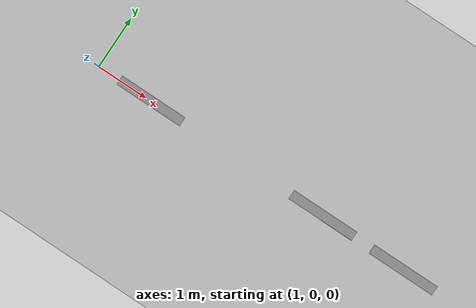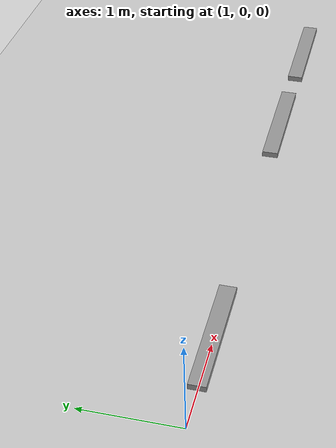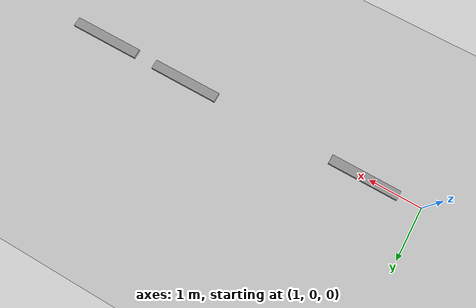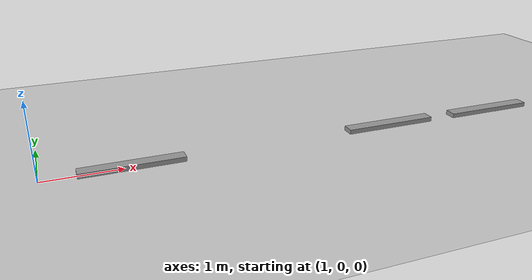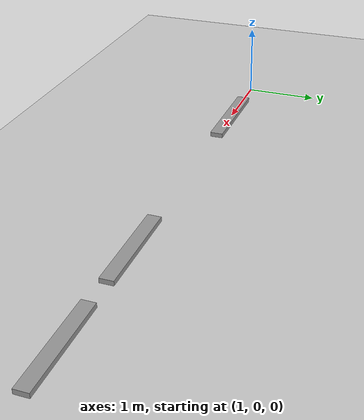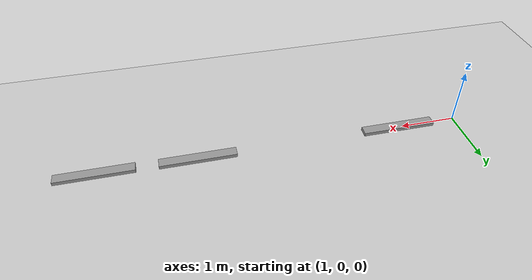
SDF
<sdf version='1.6'>
  <world name='default'>
    <light name='sun' type='directional'>
      <cast_shadows>1</cast_shadows>
      <pose frame=''>0 0 10 0 -0 0</pose>
      <diffuse>0.8 0.8 0.8 1</diffuse>
      <specular>0.2 0.2 0.2 1</specular>
      <attenuation>
        <range>1000</range>
        <constant>0.9</constant>
        <linear>0.01</linear>
        <quadratic>0.001</quadratic>
      </attenuation>
      <direction>-0.5 0.1 -0.9</direction>
    </light>
    <model name='ground_plane'>
      <static>1</static>
      <link name='link'>
        <collision name='collision'>
          <geometry>
            <plane>
              <normal>0 0 1</normal>
              <size>100 100</size>
            </plane>
          </geometry>
          <surface>
            <contact>
              <ode>
                <kp>1e+12</kp>
                <min_depth>0.01</min_depth>
              </ode>
            </contact>
            <friction>
              <ode>
                <mu>1e+06</mu>
                <mu2>500000</mu2>
              </ode>
              <torsional>
                <ode/>
              </torsional>
            </friction>
            <bounce/>
          </surface>
          <max_contacts>10</max_contacts>
        </collision>
        <visual name='visual'>
          <cast_shadows>0</cast_shadows>
          <geometry>
            <plane>
              <normal>0 0 1</normal>
              <size>100 100</size>
            </plane>
          </geometry>
          <material>
            <script>
              <uri>file://media/materials/scripts/gazebo.material</uri>
              <name>Gazebo/Grey</name>
            </script>
          </material>
        </visual>
        <self_collide>0</self_collide>
        <enable_wind>0</enable_wind>
        <kinematic>0</kinematic>
      </link>
    </model>
    <gravity>0 0 -9.8</gravity>
    <magnetic_field>6e-06 2.3e-05 -4.2e-05</magnetic_field>
    <atmosphere type='adiabatic'/>
    <physics name='default_physics' default='0' type='ode'>
      <max_step_size>0.001</max_step_size>
      <real_time_factor>1</real_time_factor>
      <real_time_update_rate>0</real_time_update_rate>
    </physics>
    <scene>
      <ambient>0.4 0.4 0.4 1</ambient>
      <background>0.7 0.7 0.7 1</background>
      <shadows>1</shadows>
    </scene>
    <wind/>
    <spherical_coordinates>
      <surface_model>EARTH_WGS84</surface_model>
      <latitude_deg>0</latitude_deg>
      <longitude_deg>0</longitude_deg>
      <elevation>0</elevation>
      <heading_deg>0</heading_deg>
    </spherical_coordinates>
    <model name='unit_box_heavy_clone_clone_clone'>
      <link name='unit_box::link'>
        <inertial>
          <mass>5000</mass>
          <inertia>
            <ixx>833.333</ixx>
            <ixy>0</ixy>
            <ixz>0</ixz>
            <iyy>833.333</iyy>
            <iyz>0</iyz>
            <izz>833.333</izz>
          </inertia>
          <pose frame=''>0 0 0 0 -0 0</pose>
        </inertial>
        <self_collide>0</self_collide>
        <enable_wind>0</enable_wind>
        <kinematic>0</kinematic>
        <pose frame=''>0 0 0 0 -0 0</pose>
        <gravity>1</gravity>
        <visual name='visual'>
          <geometry>
            <box>
              <size>1.30816 0.176312 0.062582</size>
            </box>
          </geometry>
          <material>
            <script>
              <name>Gazebo/Grey</name>
              <uri>file://media/materials/scripts/gazebo.material</uri>
            </script>
            <shader type='pixel'>
              <normal_map>__default__</normal_map>
            </shader>
          </material>
          <pose frame=''>0 0 0 0 -0 0</pose>
          <transparency>0</transparency>
          <cast_shadows>1</cast_shadows>
        </visual>
        <collision name='collision'>
          <laser_retro>0</laser_retro>
          <max_contacts>10</max_contacts>
          <pose frame=''>0 0 0 0 -0 0</pose>
          <geometry>
            <box>
              <size>1.30816 0.176312 0.062582</size>
            </box>
          </geometry>
          <surface>
            <friction>
              <ode>
                <mu>1</mu>
                <mu2>1</mu2>
                <fdir1>0 0 0</fdir1>
                <slip1>0</slip1>
                <slip2>0</slip2>
              </ode>
              <torsional>
                <coefficient>1</coefficient>
                <patch_radius>0</patch_radius>
                <surface_radius>0</surface_radius>
                <use_patch_radius>1</use_patch_radius>
                <ode>
                  <slip>0</slip>
                </ode>
              </torsional>
            </friction>
            <bounce>
              <restitution_coefficient>0</restitution_coefficient>
              <threshold>1e+06</threshold>
            </bounce>
            <contact>
              <collide_without_contact>0</collide_without_contact>
              <collide_without_contact_bitmask>1</collide_without_contact_bitmask>
              <collide_bitmask>1</collide_bitmask>
              <ode>
                <soft_cfm>0</soft_cfm>
                <soft_erp>0.2</soft_erp>
                <kp>1e+13</kp>
                <kd>1</kd>
                <max_vel>0.01</max_vel>
                <min_depth>0</min_depth>
              </ode>
              <bullet>
                <split_impulse>1</split_impulse>
                <split_impulse_penetration_threshold>-0.01</split_impulse_penetration_threshold>
                <soft_cfm>0</soft_cfm>
                <soft_erp>0.2</soft_erp>
                <kp>1e+13</kp>
                <kd>1</kd>
              </bullet>
            </contact>
          </surface>
        </collision>
      </link>
      <static>0</static>
      <allow_auto_disable>1</allow_auto_disable>
      <pose frame=''>2.08958 0.009134 0.031291 2e-06 -0 -3e-05</pose>
    </model>
    <model name='unit_box_heavy_clone_clone_clone_clone'>
      <link name='unit_box::link'>
        <inertial>
          <mass>5000</mass>
          <inertia>
            <ixx>833.333</ixx>
            <ixy>0</ixy>
            <ixz>0</ixz>
            <iyy>833.333</iyy>
            <iyz>0</iyz>
            <izz>833.333</izz>
          </inertia>
          <pose frame=''>0 0 0 0 -0 0</pose>
        </inertial>
        <self_collide>0</self_collide>
        <enable_wind>0</enable_wind>
        <kinematic>0</kinematic>
        <pose frame=''>0 0 0 0 -0 0</pose>
        <gravity>1</gravity>
        <visual name='visual'>
          <geometry>
            <box>
              <size>1.30816 0.176312 0.062582</size>
            </box>
          </geometry>
          <material>
            <script>
              <name>Gazebo/Grey</name>
              <uri>file://media/materials/scripts/gazebo.material</uri>
            </script>
            <shader type='pixel'>
              <normal_map>__default__</normal_map>
            </shader>
          </material>
          <pose frame=''>0 0 0 0 -0 0</pose>
          <transparency>0</transparency>
          <cast_shadows>1</cast_shadows>
        </visual>
        <collision name='collision'>
          <laser_retro>0</laser_retro>
          <max_contacts>10</max_contacts>
          <pose frame=''>0 0 0 0 -0 0</pose>
          <geometry>
            <box>
              <size>1.30816 0.176312 0.062582</size>
            </box>
          </geometry>
          <surface>
            <friction>
              <ode>
                <mu>1</mu>
                <mu2>1</mu2>
                <fdir1>0 0 0</fdir1>
                <slip1>0</slip1>
                <slip2>0</slip2>
              </ode>
              <torsional>
                <coefficient>1</coefficient>
                <patch_radius>0</patch_radius>
                <surface_radius>0</surface_radius>
                <use_patch_radius>1</use_patch_radius>
                <ode>
                  <slip>0</slip>
                </ode>
              </torsional>
            </friction>
            <bounce>
              <restitution_coefficient>0</restitution_coefficient>
              <threshold>1e+06</threshold>
            </bounce>
            <contact>
              <collide_without_contact>0</collide_without_contact>
              <collide_without_contact_bitmask>1</collide_without_contact_bitmask>
              <collide_bitmask>1</collide_bitmask>
              <ode>
                <soft_cfm>0</soft_cfm>
                <soft_erp>0.2</soft_erp>
                <kp>1e+13</kp>
                <kd>1</kd>
                <max_vel>0.01</max_vel>
                <min_depth>0</min_depth>
              </ode>
              <bullet>
                <split_impulse>1</split_impulse>
                <split_impulse_penetration_threshold>-0.01</split_impulse_penetration_threshold>
                <soft_cfm>0</soft_cfm>
                <soft_erp>0.2</soft_erp>
                <kp>1e+13</kp>
                <kd>1</kd>
              </bullet>
            </contact>
          </surface>
        </collision>
      </link>
      <static>0</static>
      <allow_auto_disable>1</allow_auto_disable>
      <pose frame=''>7.3588 -0.001088 0.031291 -3e-06 -0 -3e-05</pose>
    </model>
    <model name='unit_box_heavy_clone_clone_clone_clone_0'>
      <link name='unit_box::link'>
        <inertial>
          <mass>5000</mass>
          <inertia>
            <ixx>833.333</ixx>
            <ixy>0</ixy>
            <ixz>0</ixz>
            <iyy>833.333</iyy>
            <iyz>0</iyz>
            <izz>833.333</izz>
          </inertia>
          <pose frame=''>0 0 0 0 -0 0</pose>
        </inertial>
        <self_collide>0</self_collide>
        <enable_wind>0</enable_wind>
        <kinematic>0</kinematic>
        <pose frame=''>0 0 0 0 -0 0</pose>
        <gravity>1</gravity>
        <visual name='visual'>
          <geometry>
            <box>
              <size>1.30816 0.176312 0.062582</size>
            </box>
          </geometry>
          <material>
            <script>
              <name>Gazebo/Grey</name>
              <uri>file://media/materials/scripts/gazebo.material</uri>
            </script>
            <shader type='pixel'>
              <normal_map>__default__</normal_map>
            </shader>
          </material>
          <pose frame=''>0 0 0 0 -0 0</pose>
          <transparency>0</transparency>
          <cast_shadows>1</cast_shadows>
        </visual>
        <collision name='collision'>
          <laser_retro>0</laser_retro>
          <max_contacts>10</max_contacts>
          <pose frame=''>0 0 0 0 -0 0</pose>
          <geometry>
            <box>
              <size>1.30816 0.176312 0.062582</size>
            </box>
          </geometry>
          <surface>
            <friction>
              <ode>
                <mu>1</mu>
                <mu2>1</mu2>
                <fdir1>0 0 0</fdir1>
                <slip1>0</slip1>
                <slip2>0</slip2>
              </ode>
              <torsional>
                <coefficient>1</coefficient>
                <patch_radius>0</patch_radius>
                <surface_radius>0</surface_radius>
                <use_patch_radius>1</use_patch_radius>
                <ode>
                  <slip>0</slip>
                </ode>
              </torsional>
            </friction>
            <bounce>
              <restitution_coefficient>0</restitution_coefficient>
              <threshold>1e+06</threshold>
            </bounce>
            <contact>
              <collide_without_contact>0</collide_without_contact>
              <collide_without_contact_bitmask>1</collide_without_contact_bitmask>
              <collide_bitmask>1</collide_bitmask>
              <ode>
                <soft_cfm>0</soft_cfm>
                <soft_erp>0.2</soft_erp>
                <kp>1e+13</kp>
                <kd>1</kd>
                <max_vel>0.01</max_vel>
                <min_depth>0</min_depth>
              </ode>
              <bullet>
                <split_impulse>1</split_impulse>
                <split_impulse_penetration_threshold>-0.01</split_impulse_penetration_threshold>
                <soft_cfm>0</soft_cfm>
                <soft_erp>0.2</soft_erp>
                <kp>1e+13</kp>
                <kd>1</kd>
              </bullet>
            </contact>
          </surface>
        </collision>
      </link>
      <static>0</static>
      <allow_auto_disable>1</allow_auto_disable>
      <pose frame=''>5.67589 0.012274 0.031291 -0 -0 -3e-05</pose>
    </model>
    <gui fullscreen='0'>
      <camera name='user_camera'>
        <pose frame=''>-2.54383 -1.58338 9.52251 -0 1.09964 -0.147787</pose>
        <view_controller>orbit</view_controller>
        <projection_type>perspective</projection_type>
      </camera>
    </gui>
  </world>
</sdf>
